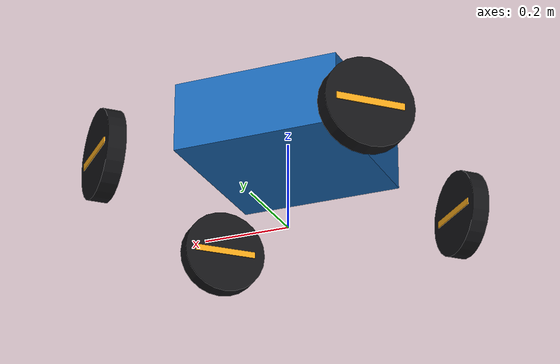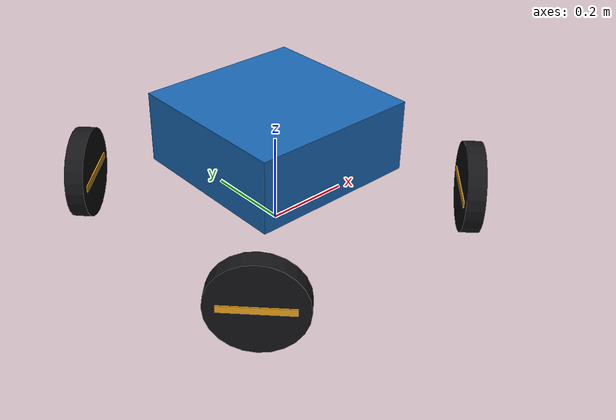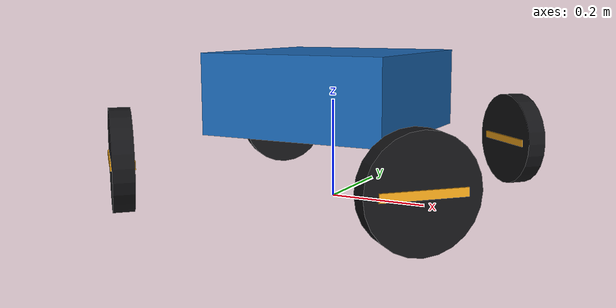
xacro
<?xml version="1.0"?>
<robot name="omni4" xmlns:xacro="http://www.ros.org/wiki/xacro">
  <material name="body"><color rgba="0.1 0.4 0.7 1"/></material>
  <material name="rubber"><color rgba="0.08 0.08 0.09 1"/></material>
  <material name="spoke"><color rgba="0.95 0.65 0.1 1"/></material>
  <link name="base_footprint"/>
  <joint name="base_fixed" type="fixed"><parent link="base_footprint"/><child link="base_link"/></joint>
  <link name="base_link">
    <visual><origin xyz="0 0 0.22"/><geometry><box size="0.38 0.38 0.16"/></geometry><material name="body"/></visual>
    <collision><origin xyz="0 0 0.22"/><geometry><box size="0.38 0.38 0.16"/></geometry></collision>
  </link>
  <xacro:macro name="wheel" params="joint x y angle radius:=0.1">
    <link name="${joint}_link">
      <!-- 外观用轮毂圆柱和色条；被动滚子的自由方向由运动学约束描述。 -->
      <visual><origin rpy="${-pi/2} 0 0"/><geometry><cylinder radius="${radius}" length="0.04"/></geometry><material name="rubber"/></visual>
      <visual><geometry><box size="0.15 0.045 0.015"/></geometry><material name="spoke"/></visual>
      <collision><origin rpy="${-pi/2} 0 0"/><geometry><cylinder radius="${radius}" length="0.04"/></geometry></collision>
    </link>
    <joint name="${joint}" type="continuous">
      <parent link="base_link"/><child link="${joint}_link"/>
      <origin xyz="${x} ${y} ${radius}" rpy="0 0 ${angle}"/>
      <axis xyz="0 1 0"/><limit effort="20" velocity="30"/>
    </joint>
  </xacro:macro>
  <xacro:wheel joint="wheel_0_joint" x="0.3" y="0.3" angle="2.356194490192345"/>
  <xacro:wheel joint="wheel_1_joint" x="-0.3" y="0.3" angle="3.926990816987241"/>
  <xacro:wheel joint="wheel_2_joint" x="-0.3" y="-0.3" angle="5.497787143782138"/>
  <xacro:wheel joint="wheel_3_joint" x="0.2999999999999999" y="-0.3" angle="7.068583470577035"/>
</robot>
